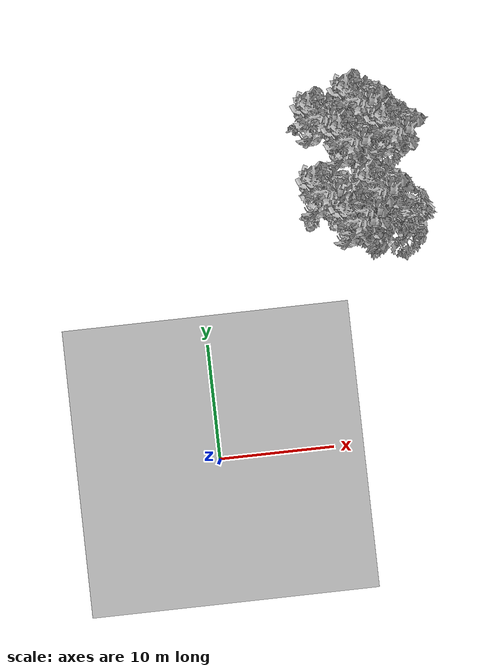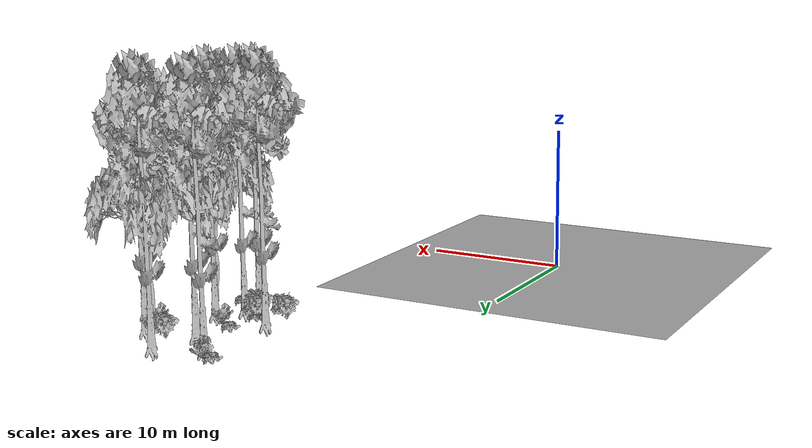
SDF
<sdf version="1.7">
 <world name="default">
  <model name="ground_plane">
   <static>1</static>
   <link name="link">
    <collision name="collision">
     <pose>-50 0 0 0 -0 0</pose>
     <geometry><plane><normal>0 0 1</normal><size>80 80</size></plane></geometry>
     <surface><contact><ode><min_depth>0.01</min_depth><max_vel>0</max_vel></ode></contact></surface>
    </collision>
    <visual name="grass">
     <cast_shadows>0</cast_shadows>
     <geometry>
      <mesh>
       <scale>0.46714285714285714 0.46714285714285714 0.1</scale>
       <uri>file://grass_plane/meshes/grass_plane.dae</uri>
      </mesh>
     </geometry>
    </visual>
   </link>
  </model>
  <model name="Tree 14">
   <static>1</static>
   <pose>16.68179118057236 25.45912591755635 0 1.57079 -0 0</pose>
   <link name="link">
    <collision name="collision">
     <geometry><mesh><scale>3.5 5 3.5</scale><uri>model://tree_9/meshes/tree_9.obj</uri></mesh></geometry>
    </collision>
    <visual name="visual">
     <geometry><mesh><scale>3.5 5 3.5</scale><uri>model://tree_9/meshes/tree_9.obj</uri></mesh></geometry>
    </visual>
   </link>
  </model>
  <model name="Tree 42">
   <static>1</static>
   <pose>13.17192888474083 24.93482480410779 0 1.57079 -0 0</pose>
   <link name="link">
    <collision name="collision">
     <geometry><mesh><scale>3.5 5 3.5</scale><uri>model://tree_9/meshes/tree_9.obj</uri></mesh></geometry>
    </collision>
    <visual name="visual">
     <geometry><mesh><scale>3.5 5 3.5</scale><uri>model://tree_9/meshes/tree_9.obj</uri></mesh></geometry>
    </visual>
   </link>
  </model>
  <model name="Tree 61">
   <static>1</static>
   <pose>13.717084339428744 19.29507900013307 0 1.57079 -0 0</pose>
   <link name="link">
    <collision name="collision">
     <geometry><mesh><scale>3.5 5 3.5</scale><uri>model://tree_9/meshes/tree_9.obj</uri></mesh></geometry>
    </collision>
    <visual name="visual">
     <geometry><mesh><scale>3.5 5 3.5</scale><uri>model://tree_9/meshes/tree_9.obj</uri></mesh></geometry>
    </visual>
   </link>
  </model>
  <model name="Tree 67">
   <static>1</static>
   <pose>14.904311346005379 20.821430750769316 0 1.57079 -0 0</pose>
   <link name="link">
    <collision name="collision">
     <geometry><mesh><scale>3.5 5 3.5</scale><uri>model://tree_9/meshes/tree_9.obj</uri></mesh></geometry>
    </collision>
    <visual name="visual">
     <geometry><mesh><scale>3.5 5 3.5</scale><uri>model://tree_9/meshes/tree_9.obj</uri></mesh></geometry>
    </visual>
   </link>
  </model>
  <model name="Tree 91">
   <static>1</static>
   <pose>16.433408374808216 18.59523553302776 0 1.57079 -0 0</pose>
   <link name="link">
    <collision name="collision">
     <geometry><mesh><scale>3.5 5 3.5</scale><uri>model://tree_2/meshes/tree_2.obj</uri></mesh></geometry>
    </collision>
    <visual name="visual">
     <geometry><mesh><scale>3.5 5 3.5</scale><uri>model://tree_2/meshes/tree_2.obj</uri></mesh></geometry>
    </visual>
   </link>
  </model>
  <model name="Tree 196">
   <static>1</static>
   <pose>14.035343265638517 27.974671759970107 0 1.57079 -0 0</pose>
   <link name="link">
    <collision name="collision">
     <geometry><mesh><scale>3.5 5 3.5</scale><uri>model://tree_9/meshes/tree_9.obj</uri></mesh></geometry>
    </collision>
    <visual name="visual">
     <geometry><mesh><scale>3.5 5 3.5</scale><uri>model://tree_9/meshes/tree_9.obj</uri></mesh></geometry>
    </visual>
   </link>
  </model>
  <model name="Tree 268">
   <static>1</static>
   <pose>10.96804562721227 26.93589712970197 0 1.57079 -0 0</pose>
   <link name="link">
    <collision name="collision">
     <geometry><mesh><scale>3.5 5 3.5</scale><uri>model://tree_9/meshes/tree_9.obj</uri></mesh></geometry>
    </collision>
    <visual name="visual">
     <geometry><mesh><scale>3.5 5 3.5</scale><uri>model://tree_9/meshes/tree_9.obj</uri></mesh></geometry>
    </visual>
   </link>
  </model>
  <model name="Tree 407">
   <static>1</static>
   <pose>13.091861196794888 18.557209805509956 0 1.57079 -0 0</pose>
   <link name="link">
    <collision name="collision">
     <geometry><mesh><scale>3.5 5 3.5</scale><uri>model://tree_9/meshes/tree_9.obj</uri></mesh></geometry>
    </collision>
    <visual name="visual">
     <geometry><mesh><scale>3.5 5 3.5</scale><uri>model://tree_9/meshes/tree_9.obj</uri></mesh></geometry>
    </visual>
   </link>
  </model>
  <model name="Tree 432">
   <static>1</static>
   <pose>15.590897523152407 25.977769367913822 0 1.57079 -0 0</pose>
   <link name="link">
    <collision name="collision">
     <geometry><mesh><scale>3.5 5 3.5</scale><uri>model://tree_2/meshes/tree_2.obj</uri></mesh></geometry>
    </collision>
    <visual name="visual">
     <geometry><mesh><scale>3.5 5 3.5</scale><uri>model://tree_2/meshes/tree_2.obj</uri></mesh></geometry>
    </visual>
   </link>
  </model>
  <model name="Tree 433">
   <static>1</static>
   <pose>10.768615487485675 21.091426941259527 0 1.57079 -0 0</pose>
   <link name="link">
    <collision name="collision">
     <geometry><mesh><scale>3.5 5 3.5</scale><uri>model://tree_9/meshes/tree_9.obj</uri></mesh></geometry>
    </collision>
    <visual name="visual">
     <geometry><mesh><scale>3.5 5 3.5</scale><uri>model://tree_9/meshes/tree_9.obj</uri></mesh></geometry>
    </visual>
   </link>
  </model>
  <model name="Bush 14">
   <static>1</static>
   <pose>10.011013186068304 28.12068316363039 0 1.57079 -0 0</pose>
   <link name="link">
    <collision name="collision">
     <geometry><mesh><scale>2 2 2</scale><uri>model://bush_4/meshes/bush_4.obj</uri></mesh></geometry>
     <surface><contact><collide_without_contact>false</collide_without_contact></contact></surface>
    </collision>
    <visual name="visual">
     <geometry><mesh><scale>2 2 2</scale><uri>model://bush_4/meshes/bush_4.obj</uri></mesh></geometry>
    </visual>
   </link>
  </model>
  <model name="Bush 66">
   <static>1</static>
   <pose>10.137488566142814 19.655431003205166 0 1.57079 -0 0</pose>
   <link name="link">
    <collision name="collision">
     <geometry><mesh><scale>2 2 2</scale><uri>model://bush_1/meshes/bush_1.obj</uri></mesh></geometry>
     <surface><contact><collide_without_contact>false</collide_without_contact></contact></surface>
    </collision>
    <visual name="visual">
     <geometry><mesh><scale>2 2 2</scale><uri>model://bush_1/meshes/bush_1.obj</uri></mesh></geometry>
    </visual>
   </link>
  </model>
  <model name="Bush 144">
   <static>1</static>
   <pose>12.04591656016008 20.23739381565008 0 1.57079 -0 0</pose>
   <link name="link">
    <collision name="collision">
     <geometry><mesh><scale>2 2 2</scale><uri>model://bush_2/meshes/bush_2.obj</uri></mesh></geometry>
     <surface><contact><collide_without_contact>false</collide_without_contact></contact></surface>
    </collision>
    <visual name="visual">
     <geometry><mesh><scale>2 2 2</scale><uri>model://bush_2/meshes/bush_2.obj</uri></mesh></geometry>
    </visual>
   </link>
  </model>
  <model name="Bush 158">
   <static>1</static>
   <pose>13.013395331304089 18.90703090815844 0 1.57079 -0 0</pose>
   <link name="link">
    <collision name="collision">
     <geometry><mesh><scale>2 2 2</scale><uri>model://bush_2/meshes/bush_2.obj</uri></mesh></geometry>
     <surface><contact><collide_without_contact>false</collide_without_contact></contact></surface>
    </collision>
    <visual name="visual">
     <geometry><mesh><scale>2 2 2</scale><uri>model://bush_2/meshes/bush_2.obj</uri></mesh></geometry>
    </visual>
   </link>
  </model>
  <model name="Bush 195">
   <static>1</static>
   <pose>11.752935827594953 20.483671799569677 0 1.57079 -0 0</pose>
   <link name="link">
    <collision name="collision">
     <geometry><mesh><scale>2 2 2</scale><uri>model://bush_1/meshes/bush_1.obj</uri></mesh></geometry>
     <surface><contact><collide_without_contact>false</collide_without_contact></contact></surface>
    </collision>
    <visual name="visual">
     <geometry><mesh><scale>2 2 2</scale><uri>model://bush_1/meshes/bush_1.obj</uri></mesh></geometry>
    </visual>
   </link>
  </model>
  <model name="Bush 234">
   <static>1</static>
   <pose>16.423826025016538 24.570263385959038 0 1.57079 -0 0</pose>
   <link name="link">
    <collision name="collision">
     <geometry><mesh><scale>2 2 2</scale><uri>model://bush_0/meshes/bush_0.obj</uri></mesh></geometry>
     <surface><contact><collide_without_contact>false</collide_without_contact></contact></surface>
    </collision>
    <visual name="visual">
     <geometry><mesh><scale>2 2 2</scale><uri>model://bush_0/meshes/bush_0.obj</uri></mesh></geometry>
    </visual>
   </link>
  </model>
  <model name="Bush 324">
   <static>1</static>
   <pose>14.942918128307731 17.775348282938268 0 1.57079 -0 0</pose>
   <link name="link">
    <collision name="collision">
     <geometry><mesh><scale>2 2 2</scale><uri>model://bush_2/meshes/bush_2.obj</uri></mesh></geometry>
     <surface><contact><collide_without_contact>false</collide_without_contact></contact></surface>
    </collision>
    <visual name="visual">
     <geometry><mesh><scale>2 2 2</scale><uri>model://bush_2/meshes/bush_2.obj</uri></mesh></geometry>
    </visual>
   </link>
  </model>
  <model name="Bush 342">
   <static>1</static>
   <pose>9.52206019253088 27.983127641277235 0 1.57079 -0 0</pose>
   <link name="link">
    <collision name="collision">
     <geometry><mesh><scale>2 2 2</scale><uri>model://bush_2/meshes/bush_2.obj</uri></mesh></geometry>
     <surface><contact><collide_without_contact>false</collide_without_contact></contact></surface>
    </collision>
    <visual name="visual">
     <geometry><mesh><scale>2 2 2</scale><uri>model://bush_2/meshes/bush_2.obj</uri></mesh></geometry>
    </visual>
   </link>
  </model>
  <model name="Bush 347">
   <static>1</static>
   <pose>15.797772838701405 25.95723603908884 0 1.57079 -0 0</pose>
   <link name="link">
    <collision name="collision">
     <geometry><mesh><scale>2 2 2</scale><uri>model://bush_0/meshes/bush_0.obj</uri></mesh></geometry>
     <surface><contact><collide_without_contact>false</collide_without_contact></contact></surface>
    </collision>
    <visual name="visual">
     <geometry><mesh><scale>2 2 2</scale><uri>model://bush_0/meshes/bush_0.obj</uri></mesh></geometry>
    </visual>
   </link>
  </model>
  <model name="Bush 363">
   <static>1</static>
   <pose>12.209606160805372 22.763350826669992 0 1.57079 -0 0</pose>
   <link name="link">
    <collision name="collision">
     <geometry><mesh><scale>2 2 2</scale><uri>model://bush_2/meshes/bush_2.obj</uri></mesh></geometry>
     <surface><contact><collide_without_contact>false</collide_without_contact></contact></surface>
    </collision>
    <visual name="visual">
     <geometry><mesh><scale>2 2 2</scale><uri>model://bush_2/meshes/bush_2.obj</uri></mesh></geometry>
    </visual>
   </link>
  </model>
  <model name="Bush 423">
   <static>1</static>
   <pose>14.422257081031681 26.214008813650267 0 1.57079 -0 0</pose>
   <link name="link">
    <collision name="collision">
     <geometry><mesh><scale>2 2 2</scale><uri>model://bush_1/meshes/bush_1.obj</uri></mesh></geometry>
     <surface><contact><collide_without_contact>false</collide_without_contact></contact></surface>
    </collision>
    <visual name="visual">
     <geometry><mesh><scale>2 2 2</scale><uri>model://bush_1/meshes/bush_1.obj</uri></mesh></geometry>
    </visual>
   </link>
  </model>
  <model name="Bush 517">
   <static>1</static>
   <pose>12.208637195209796 19.515731127315625 0 1.57079 -0 0</pose>
   <link name="link">
    <collision name="collision">
     <geometry><mesh><scale>2 2 2</scale><uri>model://bush_1/meshes/bush_1.obj</uri></mesh></geometry>
     <surface><contact><collide_without_contact>false</collide_without_contact></contact></surface>
    </collision>
    <visual name="visual">
     <geometry><mesh><scale>2 2 2</scale><uri>model://bush_1/meshes/bush_1.obj</uri></mesh></geometry>
    </visual>
   </link>
  </model>
  <model name="Bush 584">
   <static>1</static>
   <pose>12.747199354863284 22.889952756456616 0 1.57079 -0 0</pose>
   <link name="link">
    <collision name="collision">
     <geometry><mesh><scale>2 2 2</scale><uri>model://bush_0/meshes/bush_0.obj</uri></mesh></geometry>
     <surface><contact><collide_without_contact>false</collide_without_contact></contact></surface>
    </collision>
    <visual name="visual">
     <geometry><mesh><scale>2 2 2</scale><uri>model://bush_0/meshes/bush_0.obj</uri></mesh></geometry>
    </visual>
   </link>
  </model>
 </world>
</sdf>
